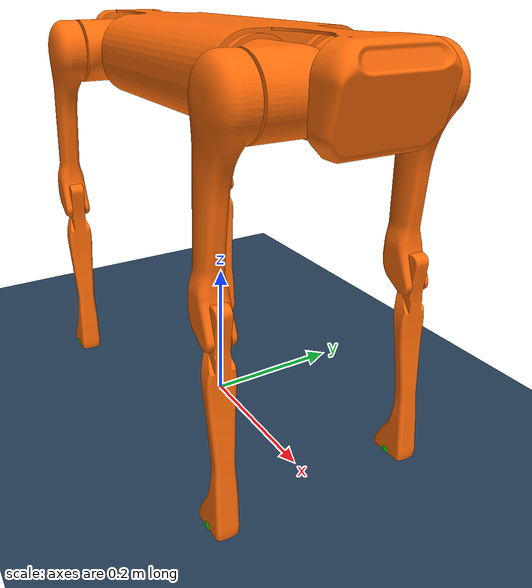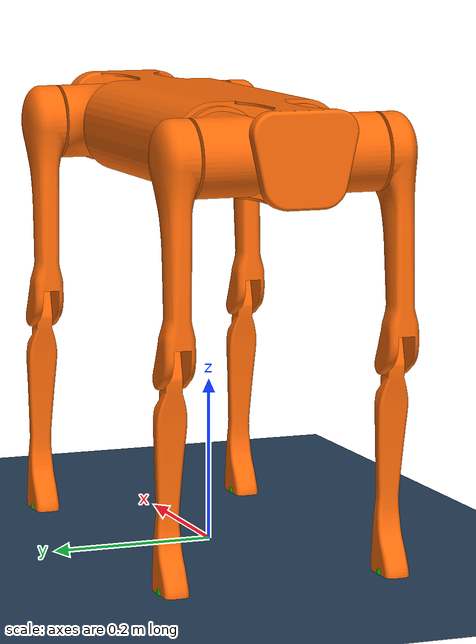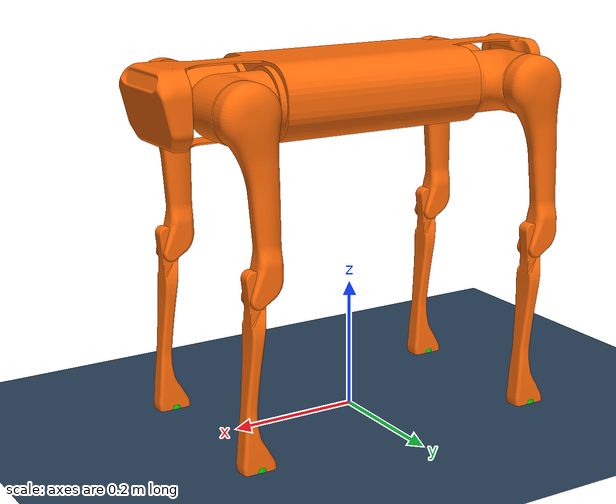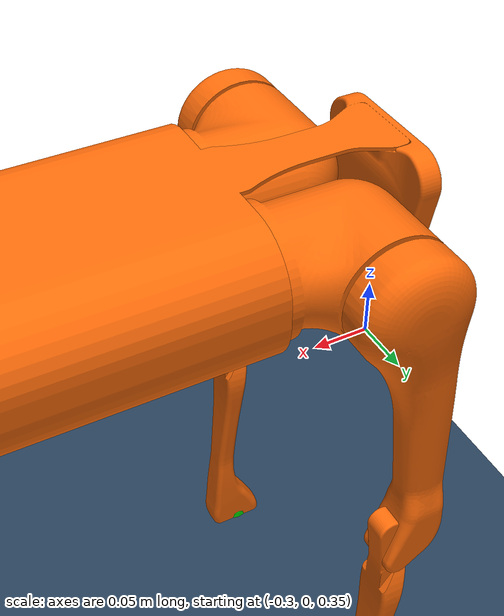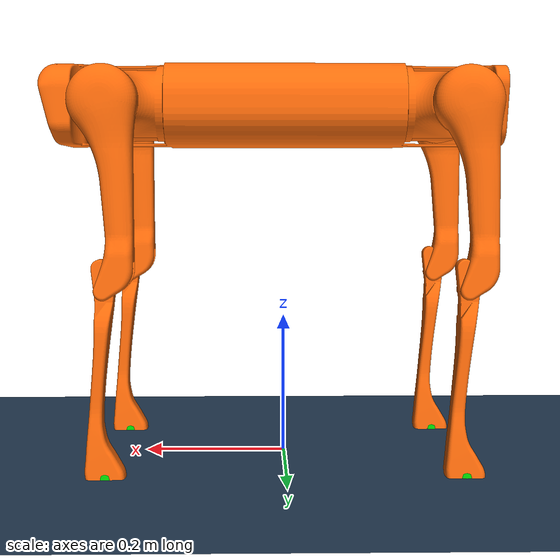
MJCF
<mujoco model="aliengo">
<default>
<default class="robot">
<default class="visual">
<geom contype="0" conaffinity="0" group="2"/>
</default>
<default class="collision">
<geom contype="0" conaffinity="1" group="3"/>
</default>
</default>
<default class="floor">
<geom type="plane" size="0 0 0.05" material="groundplane" friction="1.5 0.005 0.0001" solref="0.02 1" solimp="0.9 0.95 0.001 0.5 2"/>
</default>
</default>
<compiler angle="radian" meshdir="." balanceinertia="true"/>
<option gravity="0 0 -9.81"/>
<visual>
<global offwidth="3840" offheight="2160"/>
</visual>
<worldbody>
<body name="base" childclass="robot" pos="0 0 0.5">
<geom name="base_visual" type="box" size="0.0005 0.0005 0.0005" material="default_material" class="visual"/>
<body name="trunk">
<inertial pos="0 0 0" mass="11.644" diaginertia="0.051944892 0.24693924 0.270948307"/>
<geom name="trunk_collision" type="box" size="0.3235 0.075 0.056" class="collision"/>
<geom name="trunk_visual" type="mesh" mesh="trunk_trunk" material="orange" class="visual"/>
<body name="imu_link">
<inertial pos="0 0 0" mass="0.001" diaginertia="0.0001 1e-06 0.0001"/>
<geom name="imu_link_collision" type="box" size="0.0005 0.0005 0.0005" class="collision"/>
<site name="imu_site" pos="0 0 0"/>
</body>
<body name="FR_hip" pos="0.2407 -0.051 0">
<inertial pos="-0.022191 -0.015144 -1.5e-05" mass="1.993" diaginertia="0.002446735 0.003925876 0.004148145"/>
<joint name="FR_hip_joint" type="hinge" range="-1.2217304763960306 1.2217304763960306" axis="1 0 0"/>
<geom name="FR_hip_collision" pos="0 -0.083 0" quat="0.7071 0.7071 0 0" type="cylinder" size="0.046 0.0209" class="collision"/>
<geom name="FR_hip_visual" quat="0 1 0 0" type="mesh" mesh="FR_hip_hip" material="orange" class="visual"/>
<body name="FR_thigh" pos="0 -0.0868 0">
<inertial pos="-0.005607 0.003877 -0.048199" mass="0.639" diaginertia="0.004173855 0.004343802 0.000340136"/>
<joint name="FR_thigh_joint" type="hinge" axis="0 1 0"/>
<geom name="FR_thigh_collision" pos="0 0 -0.125" quat="0.7071 0 0.7071 0" type="box" size="0.125 0.0187 0.0215" class="collision"/>
<geom name="FR_thigh_visual" type="mesh" mesh="FR_thigh_thigh_mirror" material="orange" class="visual"/>
<body name="FR_calf" pos="0 0 -0.25">
<inertial pos="0.002781 6.3e-05 -0.142518" mass="0.207" diaginertia="0.002129279 0.002141463 3.7583e-05"/>
<joint name="FR_calf_joint" type="hinge" range="-2.775073510670984 -0.6457718232379019" axis="0 1 0"/>
<geom name="FR_calf_collision" pos="0 0 -0.125" quat="0.7071 0 0.7071 0" type="box" size="0.125 0.0104 0.008" class="collision"/>
<geom name="FR_calf_visual" type="mesh" mesh="FR_calf_calf" material="orange" class="visual"/>
<body name="FR_foot" pos="0 0 -0.25">
<inertial pos="0 0 0" quat="1 0 0 0" mass="0.06" diaginertia="1.6853999999999998e-05 1.6853999999999998e-05 1.6853999999999998e-05"/>
<geom name="FR_foot_collision" type="sphere" size="0.03" class="collision"/>
<geom name="FR_foot_visual" type="sphere" size="0.0165" material="green" class="visual" friction="1.5 0.005 0.0001" condim="3" contype="3" conaffinity="1"/>
</body>
</body>
<body name="FR_calf_rotor" pos="0.0 0.0997 0">
<inertial pos="0.0 0.0 0.0" mass="0.132" diaginertia="0.000145463 0.000133031 0.000145463"/>
<geom name="FR_calf_rotor_collision" quat="0.7071 0.7071 0 0" type="cylinder" size="0.035 0.01" class="collision"/>
<geom name="FR_calf_rotor_visual" quat="0.7071 0.7071 0 0" type="cylinder" size="0.035 0.01" material="green" class="visual"/>
</body>
</body>
<body name="FR_thigh_rotor" pos="0.0 -0.0298 0">
<inertial pos="0.0 0.0 0.0" mass="0.146" diaginertia="8.3352e-05 0.000138702 8.3352e-05"/>
<geom name="FR_thigh_rotor_collision" quat="0.7071 0.7071 0 0" type="cylinder" size="0.035 0.01" class="collision"/>
<geom name="FR_thigh_rotor_visual" quat="0.7071 0.7071 0 0" type="cylinder" size="0.035 0.01" material="green" class="visual"/>
</body>
</body>
<body name="FR_hip_rotor" pos="0.139985 -0.051 0">
<inertial pos="0.0 0.0 0.0" mass="0.146" diaginertia="0.000138702 8.3352e-05 8.3352e-05"/>
<geom name="FR_hip_rotor_collision" quat="0.7071 0 0.7071 0" type="cylinder" size="0.035 0.01" class="collision"/>
<geom name="FR_hip_rotor_visual" quat="0.7071 0 0.7071 0" type="cylinder" size="0.035 0.01" material="green" class="visual"/>
</body>
<body name="FL_hip" pos="0.2407 0.051 0">
<inertial pos="-0.022191 0.015144 -1.5e-05" mass="1.993" diaginertia="0.002446735 0.003925876 0.004148145"/>
<joint name="FL_hip_joint" type="hinge" range="-1.2217304763960306 1.2217304763960306" axis="1 0 0"/>
<geom name="FL_hip_collision" pos="0 0.083 0" quat="0.7071 0.7071 0 0" type="cylinder" size="0.046 0.0209" class="collision"/>
<geom name="FL_hip_visual" type="mesh" mesh="FR_hip_hip" material="orange" class="visual"/>
<body name="FL_thigh" pos="0 0.0868 0">
<inertial pos="-0.005607 -0.003877 -0.048199" mass="0.639" diaginertia="0.004173855 0.004343802 0.000340136"/>
<joint name="FL_thigh_joint" type="hinge" axis="0 1 0"/>
<geom name="FL_thigh_collision" pos="0 0 -0.125" quat="0.7071 0 0.7071 0" type="box" size="0.125 0.0187 0.0215" class="collision"/>
<geom name="FL_thigh_visual" type="mesh" mesh="FL_thigh_thigh" material="orange" class="visual"/>
<body name="FL_calf" pos="0 0 -0.25">
<inertial pos="0.002781 6.3e-05 -0.142518" mass="0.207" diaginertia="0.002129279 0.002141463 3.7583e-05"/>
<joint name="FL_calf_joint" type="hinge" range="-2.775073510670984 -0.6457718232379019" axis="0 1 0"/>
<geom name="FL_calf_collision" pos="0 0 -0.125" quat="0.7071 0 0.7071 0" type="box" size="0.125 0.0104 0.008" class="collision"/>
<geom name="FL_calf_visual" type="mesh" mesh="FR_calf_calf" material="orange" class="visual"/>
<body name="FL_foot" pos="0 0 -0.25">
<inertial pos="0 0 0" quat="1 0 0 0" mass="0.06" diaginertia="1.6853999999999998e-05 1.6853999999999998e-05 1.6853999999999998e-05"/>
<geom name="FL_foot_collision" type="sphere" size="0.03" class="collision"/>
<geom name="FL_foot_visual" type="sphere" size="0.0165" material="green" class="visual" friction="1.5 0.005 0.0001" condim="3" contype="3" conaffinity="1"/>
</body>
</body>
<body name="FL_calf_rotor" pos="0.0 -0.0997 0">
<inertial pos="0.0 0.0 0.0" mass="0.132" diaginertia="0.000145463 0.000133031 0.000145463"/>
<geom name="FL_calf_rotor_collision" quat="0.7071 0.7071 0 0" type="cylinder" size="0.035 0.01" class="collision"/>
<geom name="FL_calf_rotor_visual" quat="0.7071 0.7071 0 0" type="cylinder" size="0.035 0.01" material="green" class="visual"/>
</body>
</body>
<body name="FL_thigh_rotor" pos="0.0 0.0298 0">
<inertial pos="0.0 0.0 0.0" mass="0.146" diaginertia="8.3352e-05 0.000138702 8.3352e-05"/>
<geom name="FL_thigh_rotor_collision" quat="0.7071 0.7071 0 0" type="cylinder" size="0.035 0.01" class="collision"/>
<geom name="FL_thigh_rotor_visual" quat="0.7071 0.7071 0 0" type="cylinder" size="0.035 0.01" material="green" class="visual"/>
</body>
</body>
<body name="FL_hip_rotor" pos="0.139985 0.051 0">
<inertial pos="0.0 0.0 0.0" mass="0.146" diaginertia="0.000138702 8.3352e-05 8.3352e-05"/>
<geom name="FL_hip_rotor_collision" quat="0.7071 0 0.7071 0" type="cylinder" size="0.035 0.01" class="collision"/>
<geom name="FL_hip_rotor_visual" quat="0.7071 0 0.7071 0" type="cylinder" size="0.035 0.01" material="green" class="visual"/>
</body>
<body name="RR_hip" pos="-0.2407 -0.051 0">
<inertial pos="0.022191 -0.015144 -1.5e-05" mass="1.993" diaginertia="0.002446735 0.003925876 0.004148145"/>
<joint name="RR_hip_joint" type="hinge" range="-1.2217304763960306 1.2217304763960306" axis="1 0 0"/>
<geom name="RR_hip_collision" pos="0 -0.083 0" quat="0.7071 0.7071 0 0" type="cylinder" size="0.046 0.0209" class="collision"/>
<geom name="RR_hip_visual" quat="0 0 0 -1" type="mesh" mesh="FR_hip_hip" material="orange" class="visual"/>
<body name="RR_thigh" pos="0 -0.0868 0">
<inertial pos="-0.005607 0.003877 -0.048199" mass="0.639" diaginertia="0.004173855 0.004343802 0.000340136"/>
<joint name="RR_thigh_joint" type="hinge" axis="0 1 0"/>
<geom name="RR_thigh_collision" pos="0 0 -0.125" quat="0.7071 0 0.7071 0" type="box" size="0.125 0.0187 0.0215" class="collision"/>
<geom name="RR_thigh_visual" type="mesh" mesh="FR_thigh_thigh_mirror" material="orange" class="visual"/>
<body name="RR_calf" pos="0 0 -0.25">
<inertial pos="0.002781 6.3e-05 -0.142518" mass="0.207" diaginertia="0.002129279 0.002141463 3.7583e-05"/>
<joint name="RR_calf_joint" type="hinge" range="-2.775073510670984 -0.6457718232379019" axis="0 1 0"/>
<geom name="RR_calf_collision" pos="0 0 -0.125" quat="0.7071 0 0.7071 0" type="box" size="0.125 0.0104 0.008" class="collision"/>
<geom name="RR_calf_visual" type="mesh" mesh="FR_calf_calf" material="orange" class="visual"/>
<body name="RR_foot" pos="0 0 -0.25">
<inertial pos="0 0 0" quat="1 0 0 0" mass="0.06" diaginertia="1.6853999999999998e-05 1.6853999999999998e-05 1.6853999999999998e-05"/>
<geom name="RR_foot_collision" type="sphere" size="0.03" class="collision"/>
<geom name="RR_foot_visual" type="sphere" size="0.0165" material="green" class="visual" friction="1.5 0.005 0.0001" condim="3" contype="3" conaffinity="1"/>
</body>
</body>
<body name="RR_calf_rotor" pos="0.0 0.0997 0">
<inertial pos="0.0 0.0 0.0" mass="0.132" diaginertia="0.000145463 0.000133031 0.000145463"/>
<geom name="RR_calf_rotor_collision" quat="0.7071 0.7071 0 0" type="cylinder" size="0.035 0.01" class="collision"/>
<geom name="RR_calf_rotor_visual" quat="0.7071 0.7071 0 0" type="cylinder" size="0.035 0.01" material="green" class="visual"/>
</body>
</body>
<body name="RR_thigh_rotor" pos="0.0 -0.0298 0">
<inertial pos="0.0 0.0 0.0" mass="0.146" diaginertia="8.3352e-05 0.000138702 8.3352e-05"/>
<geom name="RR_thigh_rotor_collision" quat="0.7071 0.7071 0 0" type="cylinder" size="0.035 0.01" class="collision"/>
<geom name="RR_thigh_rotor_visual" quat="0.7071 0.7071 0 0" type="cylinder" size="0.035 0.01" material="green" class="visual"/>
</body>
</body>
<body name="RR_hip_rotor" pos="-0.139985 -0.051 0">
<inertial pos="0.0 0.0 0.0" mass="0.146" diaginertia="0.000138702 8.3352e-05 8.3352e-05"/>
<geom name="RR_hip_rotor_collision" quat="0.7071 0 0.7071 0" type="cylinder" size="0.035 0.01" class="collision"/>
<geom name="RR_hip_rotor_visual" quat="0.7071 0 0.7071 0" type="cylinder" size="0.035 0.01" material="green" class="visual"/>
</body>
<body name="RL_hip" pos="-0.2407 0.051 0">
<inertial pos="0.022191 0.015144 -1.5e-05" mass="1.993" diaginertia="0.002446735 0.003925876 0.004148145"/>
<joint name="RL_hip_joint" type="hinge" range="-1.2217304763960306 1.2217304763960306" axis="1 0 0"/>
<geom name="RL_hip_collision" pos="0 0.083 0" quat="0.7071 0.7071 0 0" type="cylinder" size="0.046 0.0209" class="collision"/>
<geom name="RL_hip_visual" quat="0 0 1 0" type="mesh" mesh="FR_hip_hip" material="orange" class="visual"/>
<body name="RL_thigh" pos="0 0.0868 0">
<inertial pos="-0.005607 -0.003877 -0.048199" mass="0.639" diaginertia="0.004173855 0.004343802 0.000340136"/>
<joint name="RL_thigh_joint" type="hinge" axis="0 1 0"/>
<geom name="RL_thigh_collision" pos="0 0 -0.125" quat="0.7071 0 0.7071 0" type="box" size="0.125 0.0187 0.0215" class="collision"/>
<geom name="RL_thigh_visual" type="mesh" mesh="FL_thigh_thigh" material="orange" class="visual"/>
<body name="RL_calf" pos="0 0 -0.25">
<inertial pos="0.002781 6.3e-05 -0.142518" mass="0.207" diaginertia="0.002129279 0.002141463 3.7583e-05"/>
<joint name="RL_calf_joint" type="hinge" range="-2.775073510670984 -0.6457718232379019" axis="0 1 0"/>
<geom name="RL_calf_collision" pos="0 0 -0.125" quat="0.7071 0 0.7071 0" type="box" size="0.125 0.0104 0.008" class="collision"/>
<geom name="RL_calf_visual" type="mesh" mesh="FR_calf_calf" material="orange" class="visual"/>
<body name="RL_foot" pos="0 0 -0.25">
<inertial pos="0 0 0" quat="1 0 0 0" mass="0.06" diaginertia="1.6853999999999998e-05 1.6853999999999998e-05 1.6853999999999998e-05"/>
<geom name="RL_foot_collision" type="sphere" size="0.03" class="collision"/>
<geom name="RL_foot_visual" type="sphere" size="0.0165" material="green" class="visual" friction="1.5 0.005 0.0001" condim="3" contype="3" conaffinity="1"/>
</body>
</body>
<body name="RL_calf_rotor" pos="0.0 -0.0997 0">
<inertial pos="0.0 0.0 0.0" mass="0.132" diaginertia="0.000145463 0.000133031 0.000145463"/>
<geom name="RL_calf_rotor_collision" quat="0.7071 0.7071 0 0" type="cylinder" size="0.035 0.01" class="collision"/>
<geom name="RL_calf_rotor_visual" quat="0.7071 0.7071 0 0" type="cylinder" size="0.035 0.01" material="green" class="visual"/>
</body>
</body>
<body name="RL_thigh_rotor" pos="0.0 0.0298 0">
<inertial pos="0.0 0.0 0.0" mass="0.146" diaginertia="8.3352e-05 0.000138702 8.3352e-05"/>
<geom name="RL_thigh_rotor_collision" quat="0.7071 0.7071 0 0" type="cylinder" size="0.035 0.01" class="collision"/>
<geom name="RL_thigh_rotor_visual" quat="0.7071 0.7071 0 0" type="cylinder" size="0.035 0.01" material="green" class="visual"/>
</body>
</body>
<body name="RL_hip_rotor" pos="-0.139985 0.051 0">
<inertial pos="0.0 0.0 0.0" mass="0.146" diaginertia="0.000138702 8.3352e-05 8.3352e-05"/>
<geom name="RL_hip_rotor_collision" quat="0.7071 0 0.7071 0" type="cylinder" size="0.035 0.01" class="collision"/>
<geom name="RL_hip_rotor_visual" quat="0.7071 0 0.7071 0" type="cylinder" size="0.035 0.01" material="green" class="visual"/>
</body>
</body>
<freejoint name="floating_base"/>
</body>
<light pos="0 0 2." dir="0 0 -1" directional="true"/>
<geom name="floor" class="floor" size="0 0 0.05"/>
</worldbody>
<asset>
<material name="green" rgba="0.0 0.8 0.0 1.0"/>
<material name="orange" rgba="1.0 0.4235294117647059 0.0392156862745098 1.0"/>
<material name="red" rgba="0.8 0.0 0.0 1.0"/>
<material name="default_material" rgba="0.7 0.7 0.7 1"/>
<mesh name="trunk_trunk" file="meshes/meshes\trunk.obj"/>
<mesh name="FR_hip_hip" file="meshes/meshes\hip.obj"/>
<mesh name="FR_thigh_thigh_mirror" file="meshes/meshes\thigh_mirror.obj"/>
<mesh name="FR_calf_calf" file="meshes/meshes\calf.obj"/>
<mesh name="FL_thigh_thigh" file="meshes/meshes\thigh.obj"/>
<texture type="2d" name="groundplane" builtin="checker" mark="edge" rgb1="0.2 0.3 0.4" rgb2="0.1 0.2 0.3" markrgb="0.8 0.8 0.8" width="300" height="300"/>
<material name="groundplane" texture="groundplane" texuniform="true" texrepeat="5 5" reflectance="0.2"/>
<texture type="skybox" builtin="gradient" rgb1="0.3 0.5 0.7" rgb2="0 0 0" width="512" height="3072"/>
</asset>
<actuator>
<motor name="FR_hip_motor" joint="FR_hip_joint"/>
<motor name="FR_thigh_motor" joint="FR_thigh_joint"/>
<motor name="FR_calf_motor" joint="FR_calf_joint"/>
<motor name="FL_hip_motor" joint="FL_hip_joint"/>
<motor name="FL_thigh_motor" joint="FL_thigh_joint"/>
<motor name="FL_calf_motor" joint="FL_calf_joint"/>
<motor name="RR_hip_motor" joint="RR_hip_joint"/>
<motor name="RR_thigh_motor" joint="RR_thigh_joint"/>
<motor name="RR_calf_motor" joint="RR_calf_joint"/>
<motor name="RL_hip_motor" joint="RL_hip_joint"/>
<motor name="RL_thigh_motor" joint="RL_thigh_joint"/>
<motor name="RL_calf_motor" joint="RL_calf_joint"/>
</actuator>
<sensor>
<accelerometer name="imu_accel" site="imu_site"/>
<gyro name="imu_gyro" site="imu_site"/>
</sensor>
<visual>
<rgba haze="0.15 0.25 0.35 1"/>
</visual>
</mujoco>
